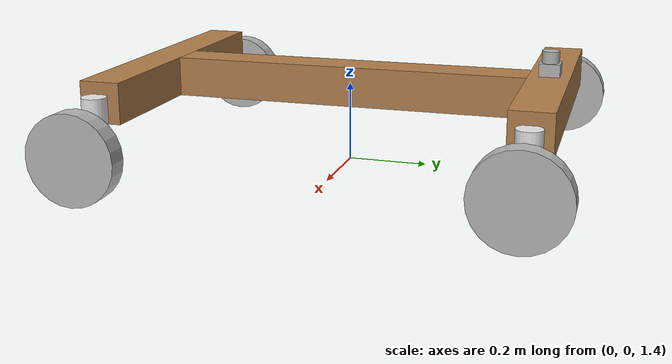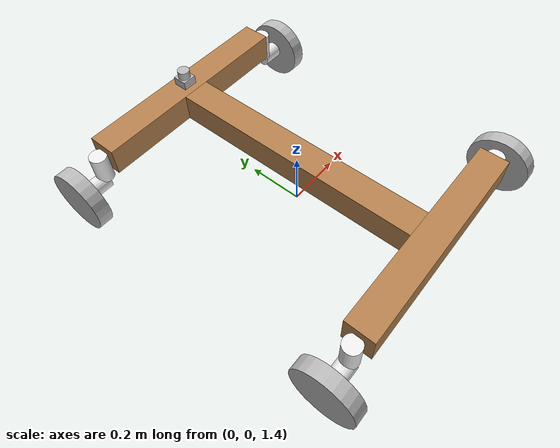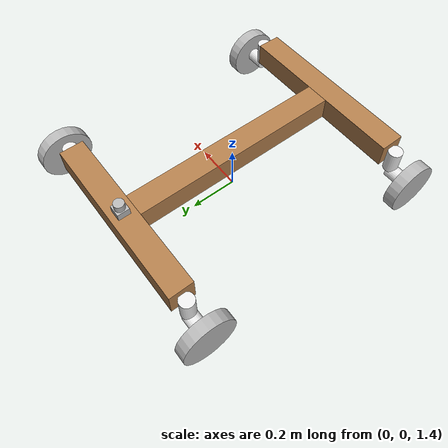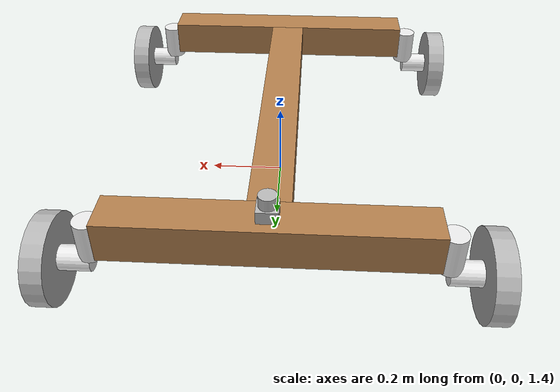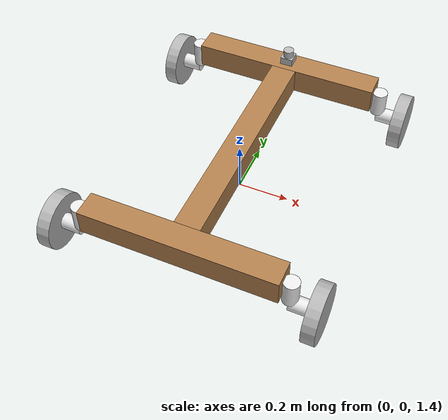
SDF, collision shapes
<?xml version="1.0" ?>
<sdf version="1.4">
    <model name="elias">
        <pose>0 0 2 0 0 0</pose>
        <static>false</static>
        <link name="chassis">
            <inertial>
                <mass>1.0</mass>
                <inertia>
                    <ixx>1.0</ixx>
                    <ixy>0.0</ixy>
                    <ixz>0.0</ixz>
                    <iyy>1.0</iyy>
                    <iyz>0.0</iyz>
                    <izz>1.0</izz>
                </inertia>
            </inertial>
            <collision name="base">
                <pose>0 0 -0.4 0 0 0</pose>
                <geometry>
                    <box>
                        <size>0.1 0.9 0.1</size>
                    </box>
                </geometry>
            </collision>
            <collision name="front_bar">
                <pose>0 0.5 -0.4 0 0 0</pose>
                <geometry>
                    <box>
                        <size>0.75 0.1 0.1</size>
                    </box>
                </geometry>
            </collision>
            <collision name="rear_bar">
                <pose>0 -0.5 -0.4 0 0 0</pose>
                <geometry>
                    <box>
                        <size>0.75 0.1 0.1</size>
                    </box>
                </geometry>
            </collision>
            <visual name="base">
                <pose>0 0 -0.4 0 0 0</pose>
                <geometry>
                    <box>
                        <size>0.1 0.9 0.1</size>
                    </box>
                </geometry>
                <material>
                    <script>
                        <uri>file://media/materials/scripts/gazebo.material</uri>
                        <name>Gazebo/Wood</name>
                    </script>
                </material>
            </visual>
            <visual name="front_bar">
                <pose>0 0.5 -0.4 0 0 0</pose>
                <geometry>
                    <box>
                        <size>0.75 0.1 0.1</size>
                    </box>
                </geometry>
                <material>
                    <script>
                        <uri>file://media/materials/scripts/gazebo.material</uri>
                        <name>Gazebo/Wood</name>
                    </script>
                </material>
            </visual>
            <visual name="rear_bar">
                <pose>0 -0.5 -0.4 0 0 0</pose>
                <geometry>
                    <box>
                        <size>0.75 0.1 0.1</size>
                    </box>
                </geometry>
                <material>
                    <script>
                        <uri>file://media/materials/scripts/gazebo.material</uri>
                        <name>Gazebo/Wood</name>
                    </script>
                </material>
            </visual>
            <visual name="monkey">
                <pose>0 0 0.04 0 0 3.14</pose>
                <geometry>
                    <mesh>
                        <uri>model://elias/meshes/monkey.dae</uri>
                    </mesh>
                </geometry>
            </visual>
            <visual name="support">
                <pose>0 0 -0.15 0 0 0</pose>
                <geometry>
                    <box>
                        <size>0.1 0.1 0.4</size>
                    </box>
                </geometry>
                <material>
                    <script>
                        <uri>file://media/materials/scripts/gazebo.material</uri>
                        <name>Gazebo/Red</name>
                    </script>
                </material>
            </visual>
            <velocity_decay>
                <linear>0</linear>
                <angular>0</angular>
            </velocity_decay>
        </link>
        <link name="left_front_wheel">
            <pose>-0.5 0.5 -0.5 0 1.57 0</pose>
            <inertial>
                <mass>0.1</mass>
            </inertial>
            <collision name="collision">
                <geometry>
                    <cylinder>
                        <radius>0.11</radius>
                        <length>0.05</length>
                    </cylinder>
                </geometry>
                <surface>
                    <friction>
                        <ode>
                            <mu>100000.0</mu>
                            <mu2>100000.0</mu2>
                            <slip1>0.0</slip1>
                            <slip2>0.0</slip2>
                        </ode>
                    </friction>
                </surface>
            </collision>
            <visual name="visual">
                <geometry>
                    <cylinder>
                        <radius>0.11</radius>
                        <length>0.05</length>
                    </cylinder>
                </geometry>
                <material>
                    <script>
                        <uri>model://elias/materials/scripts</uri>
                        <uri>model://elias/materials/textures</uri>
                        <name>Lunabotics/Wheel</name>
                    </script>
                </material>
            </visual>
            <velocity_decay>
                <linear>0</linear>
                <angular>0</angular>
            </velocity_decay>
        </link>
        <link name="right_front_wheel">
            <pose>0.5 0.5 -0.5 0 1.57 0</pose>
            <inertial>
                <mass>0.1</mass>
            </inertial>
            <collision name="collision">
                <geometry>
                    <cylinder>
                        <radius>0.11</radius>
                        <length>0.05</length>
                    </cylinder>
                </geometry>
                <surface>
                    <friction>
                        <ode>
                            <mu>100000.0</mu>
                            <mu2>100000.0</mu2>
                            <slip1>0.0</slip1>
                            <slip2>0.0</slip2>
                        </ode>
                    </friction>
                </surface>
            </collision>
            <visual name="visual">
                <geometry>
                    <cylinder>
                        <radius>0.11</radius>
                        <length>0.05</length>
                    </cylinder>
                </geometry>
                <material>
                    <script>
                        <uri>model://elias/materials/scripts</uri>
                        <uri>model://elias/materials/textures</uri>
                        <name>Lunabotics/Wheel</name>
                    </script>
                </material>
            </visual>
            <velocity_decay>
                <linear>0</linear>
                <angular>0</angular>
            </velocity_decay>
        </link>
        <link name="left_rear_wheel">
            <pose>-0.5 -0.5 -0.5 0 1.57 0</pose>
            <inertial>
                <mass>0.1</mass>
            </inertial>
            <collision name="collision">
                <geometry>
                    <cylinder>
                        <radius>0.11</radius>
                        <length>0.05</length>
                    </cylinder>
                </geometry>
                <surface>
                    <friction>
                        <ode>
                            <mu>100000.0</mu>
                            <mu2>100000.0</mu2>
                            <slip1>0.0</slip1>
                            <slip2>0.0</slip2>
                        </ode>
                    </friction>
                </surface>
            </collision>
            <visual name="visual">
                <geometry>
                    <cylinder>
                        <radius>0.11</radius>
                        <length>0.05</length>
                    </cylinder>
                </geometry>
                <material>
                    <script>
                        <uri>model://elias/materials/scripts</uri>
                        <uri>model://elias/materials/textures</uri>
                        <name>Lunabotics/Wheel</name>
                    </script>
                </material>
            </visual>
            <velocity_decay>
                <linear>0</linear>
                <angular>0</angular>
            </velocity_decay>
        </link>
        <link name="right_rear_wheel">
            <pose>0.5 -0.5 -0.5 0 1.57 0</pose>
            <inertial>
                <mass>0.1</mass>
            </inertial>
            <collision name="collision">
                <geometry>
                    <cylinder>
                        <radius>0.11</radius>
                        <length>0.05</length>
                    </cylinder>
                </geometry>
                <surface>
                    <friction>
                        <ode>
                            <mu>100000.0</mu>
                            <mu2>100000.0</mu2>
                            <slip1>0.0</slip1>
                            <slip2>0.0</slip2>
                        </ode>
                    </friction>
                </surface>
            </collision>
            <visual name="visual">
                <geometry>
                    <cylinder>
                        <radius>0.11</radius>
                        <length>0.05</length>
                    </cylinder>
                </geometry>
                <material>
                    <script>
                        <uri>model://elias/materials/scripts</uri>
                        <uri>model://elias/materials/textures</uri>
                        <name>Lunabotics/Wheel</name>
                    </script>
                </material>
            </visual>
            <velocity_decay>
                <linear>0</linear>
                <angular>0</angular>
            </velocity_decay>
        </link>
        <link name="left_front_connector">
            <pose>-0.4 0.5 -0.48 0 0 0</pose>
            <inertial>
                <mass>0.1</mass>
            </inertial>
            <collision name="vertical">
                <pose>0 0 0.05 0 0 0</pose>
                <geometry>
                    <cylinder>
                        <radius>0.03</radius>
                        <length>0.10</length>
                    </cylinder>
                </geometry>
            </collision>
            <collision name="horizontal">
                <pose>-0.05 0 -0.015 0 1.57 0</pose>
                <geometry>
                    <cylinder>
                        <radius>0.03</radius>
                        <length>0.10</length>
                    </cylinder>
                </geometry>
            </collision>
            <visual name="vertical">
                <pose>0 0 0.05 0 0 0</pose>
                <geometry>
                    <cylinder>
                        <radius>0.03</radius>
                        <length>0.10</length>
                    </cylinder>
                </geometry>
                <material>
                    <script>
                        <uri>file://media/materials/scripts/gazebo.material</uri>
                        <name>Gazebo/White</name>
                    </script>
                </material>
            </visual>
            <visual name="horizontal">
                <pose>-0.05 0 -0.015 0 1.57 0</pose>
                <geometry>
                    <cylinder>
                        <radius>0.03</radius>
                        <length>0.10</length>
                    </cylinder>
                </geometry>
                <material>
                    <script>
                        <uri>file://media/materials/scripts/gazebo.material</uri>
                        <name>Gazebo/Green</name>
                    </script>
                </material>
            </visual>
            <velocity_decay>
                <linear>0</linear>
                <angular>0</angular>
            </velocity_decay>
        </link>
        <link name="right_front_connector">
            <pose>0.4 0.5 -0.48 0 0 3.14</pose>
            <inertial>
                <mass>0.1</mass>
            </inertial>
            <collision name="vertical">
                <pose>0 0 0.05 0 0 0</pose>
                <geometry>
                    <cylinder>
                        <radius>0.03</radius>
                        <length>0.10</length>
                    </cylinder>
                </geometry>
            </collision>
            <collision name="horizontal">
                <pose>-0.05 0 -0.015 0 1.57 0</pose>
                <geometry>
                    <cylinder>
                        <radius>0.03</radius>
                        <length>0.10</length>
                    </cylinder>
                </geometry>
            </collision>
            <visual name="vertical">
                <pose>0 0 0.05 0 0 0</pose>
                <geometry>
                    <cylinder>
                        <radius>0.03</radius>
                        <length>0.10</length>
                    </cylinder>
                </geometry>
                <material>
                    <script>
                        <uri>file://media/materials/scripts/gazebo.material</uri>
                        <name>Gazebo/White</name>
                    </script>
                </material>
            </visual>
            <visual name="horizontal">
                <pose>-0.05 0 -0.015 0 1.57 0</pose>
                <geometry>
                    <cylinder>
                        <radius>0.03</radius>
                        <length>0.10</length>
                    </cylinder>
                </geometry>
                <material>
                    <script>
                        <uri>file://media/materials/scripts/gazebo.material</uri>
                        <name>Gazebo/Green</name>
                    </script>
                </material>
            </visual>
            <velocity_decay>
                <linear>0</linear>
                <angular>0</angular>
            </velocity_decay>
        </link>
        <link name="left_rear_connector">
            <pose>-0.4 -0.5 -0.48 0 0 0</pose>
            <inertial>
                <mass>0.1</mass>
            </inertial>
            <collision name="vertical">
                <pose>0 0 0.05 0 0 0</pose>
                <geometry>
                    <cylinder>
                        <radius>0.03</radius>
                        <length>0.10</length>
                    </cylinder>
                </geometry>
            </collision>
            <collision name="horizontal">
                <pose>-0.05 0 -0.015 0 1.57 0</pose>
                <geometry>
                    <cylinder>
                        <radius>0.03</radius>
                        <length>0.10</length>
                    </cylinder>
                </geometry>
            </collision>
            <visual name="vertical">
                <pose>0 0 0.05 0 0 0</pose>
                <geometry>
                    <cylinder>
                        <radius>0.03</radius>
                        <length>0.10</length>
                    </cylinder>
                </geometry>
                <material>
                    <script>
                        <uri>file://media/materials/scripts/gazebo.material</uri>
                        <name>Gazebo/White</name>
                    </script>
                </material>
            </visual>
            <visual name="horizontal">
                <pose>-0.05 0 -0.015 0 1.57 0</pose>
                <geometry>
                    <cylinder>
                        <radius>0.03</radius>
                        <length>0.10</length>
                    </cylinder>
                </geometry>
                <material>
                    <script>
                        <uri>file://media/materials/scripts/gazebo.material</uri>
                        <name>Gazebo/Green</name>
                    </script>
                </material>
            </visual>
            <velocity_decay>
                <linear>0</linear>
                <angular>0</angular>
            </velocity_decay>
        </link>
        <link name="right_rear_connector">
            <pose>0.4 -0.5 -0.48 0 0 3.14</pose>
            <inertial>
                <mass>0.1</mass>
            </inertial>
            <collision name="vertical">
                <pose>0 0 0.05 0 0 0</pose>
                <geometry>
                    <cylinder>
                        <radius>0.03</radius>
                        <length>0.10</length>
                    </cylinder>
                </geometry>
            </collision>
            <collision name="horizontal">
                <pose>-0.05 0 -0.015 0 1.57 0</pose>
                <geometry>
                    <cylinder>
                        <radius>0.03</radius>
                        <length>0.10</length>
                    </cylinder>
                </geometry>
            </collision>
            <visual name="vertical">
                <pose>0 0 0.05 0 0 0</pose>
                <geometry>
                    <cylinder>
                        <radius>0.03</radius>
                        <length>0.10</length>
                    </cylinder>
                </geometry>
                <material>
                    <script>
                        <uri>file://media/materials/scripts/gazebo.material</uri>
                        <name>Gazebo/White</name>
                    </script>
                </material>
            </visual>
            <visual name="horizontal">
                <pose>-0.05 0 -0.015 0 1.57 0</pose>
                <geometry>
                    <cylinder>
                        <radius>0.03</radius>
                        <length>0.10</length>
                    </cylinder>
                </geometry>
                <material>
                    <script>
                        <uri>file://media/materials/scripts/gazebo.material</uri>
                        <name>Gazebo/Green</name>
                    </script>
                </material>
            </visual>
            <velocity_decay>
                <linear>0</linear>
                <angular>0</angular>
            </velocity_decay>
        </link>
        <joint type="revolute" name="left_front_driving_hinge">
            <pose>0 0 0 0 0 0</pose>
            <axis>
                <xyz>-1 0 0</xyz>
            </axis>
            <parent>left_front_connector</parent>
            <child>left_front_wheel</child>
        </joint>
        <joint type="revolute" name="right_front_driving_hinge">
            <pose>0 0 0 0 0 0</pose>
            <axis>
                <xyz>-1 0 0</xyz>
            </axis>
            <parent>right_front_connector</parent>
            <child>right_front_wheel</child>
        </joint>
        <joint type="revolute" name="left_rear_driving_hinge">
            <pose>0 0 0 0 0 0</pose>
            <axis>
                <xyz>-1 0 0</xyz>
            </axis>
            <parent>left_rear_connector</parent>
            <child>left_rear_wheel</child>
        </joint>
        <joint type="revolute" name="right_rear_driving_hinge">
            <pose>0 0 0 0 0 0</pose>
            <axis>
                <xyz>-1 0 0</xyz>
            </axis>
            <parent>right_rear_connector</parent>
            <child>right_rear_wheel</child>
        </joint>
        <joint type="revolute" name="left_front_steering_hinge">
            <pose>0 0 0.1 0 0 0</pose>
            <axis>
                <xyz>0 0 1</xyz>
                <limit>
                    <lower>-1.57</lower>
                    <upper>1.57</upper>
                </limit>
            </axis>
            <parent>chassis</parent>
            <child>left_front_connector</child>
        </joint>
        <joint type="revolute" name="right_front_steering_hinge">
            <pose>0 0 0.1 0 0 0</pose>
            <axis>
                <xyz>0 0 1</xyz>
                <limit>
                    <lower>-1.57</lower>
                    <upper>1.57</upper>
                </limit>
            </axis>
            <parent>chassis</parent>
            <child>right_front_connector</child>
        </joint>
        <joint type="revolute" name="left_rear_steering_hinge">
            <pose>0 0 0.1 0 0 0</pose>
            <axis>
                <xyz>0 0 1</xyz>
                <limit>
                    <lower>-1.57</lower>
                    <upper>1.57</upper>
                </limit>
            </axis>
            <parent>chassis</parent>
            <child>left_rear_connector</child>
        </joint>
        <joint type="revolute" name="right_rear_steering_hinge">
            <pose>0 0 0.1 0 0 0</pose>
            <axis>
                <xyz>0 0 1</xyz>
                <limit>
                    <lower>-1.57</lower>
                    <upper>1.57</upper>
                </limit>
            </axis>
            <parent>chassis</parent>
            <child>right_rear_connector</child>
        </joint>
        <include>
            <uri>model://hokuyo</uri>
            <pose>0 0.5 -0.325 0 0 1.57</pose>
        </include>
        <joint name="hokuyo_joint" type="revolute">
            <child>hokuyo::link</child>
            <parent>chassis</parent>
            <axis>
                <xyz>0 0 1</xyz>
                <limit>
                    <upper>0</upper>
                    <lower>0</lower>
                </limit>
            </axis>
        </joint>
    </model>
</sdf>

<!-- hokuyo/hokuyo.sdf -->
<sdf version="1.4">
    <model name="hokuyo">
        <pose>0 0 0.035 0 0 0</pose>
        <link name="link">
            <inertial>
                <mass>2</mass>
                <inertia>
                    <ixx>1.0</ixx>
                    <ixy>0.0</ixy>
                    <ixz>0.0</ixz>
                    <iyy>1.0</iyy>
                    <iyz>0.0</iyz>
                    <izz>1.0</izz>
                </inertia>
            </inertial>
            <visual name="visual">
                <geometry>
                    <mesh>
                        <uri>model://hokuyo/meshes/hokuyo.dae</uri>
                    </mesh>
                </geometry>
            </visual>
            <collision name="collision-base">
                <pose>0 0 -0.0145 0 0 0</pose>
                <geometry>
                    <box>
                        <size>0.05 0.05 0.041</size>
                    </box>
                </geometry>
            </collision>
            <collision name="collision-top">
                <pose>0 0 0.0205 0 0 0</pose>
                <geometry>
                    <cylinder>
                        <radius>0.021</radius>
                        <length>0.029</length>
                    </cylinder>
                </geometry>
            </collision>
            <sensor name="laser" type="ray">
                <pose>0.01 0 0.0175 0 -0 0</pose>
                <plugin name="laser" filename="libLunaboticsLidarPlugin.so" />
                <always_on>1</always_on>
                <update_rate>30</update_rate>
                <visualize>true</visualize>
            </sensor>
        </link>
    </model>
</sdf>
